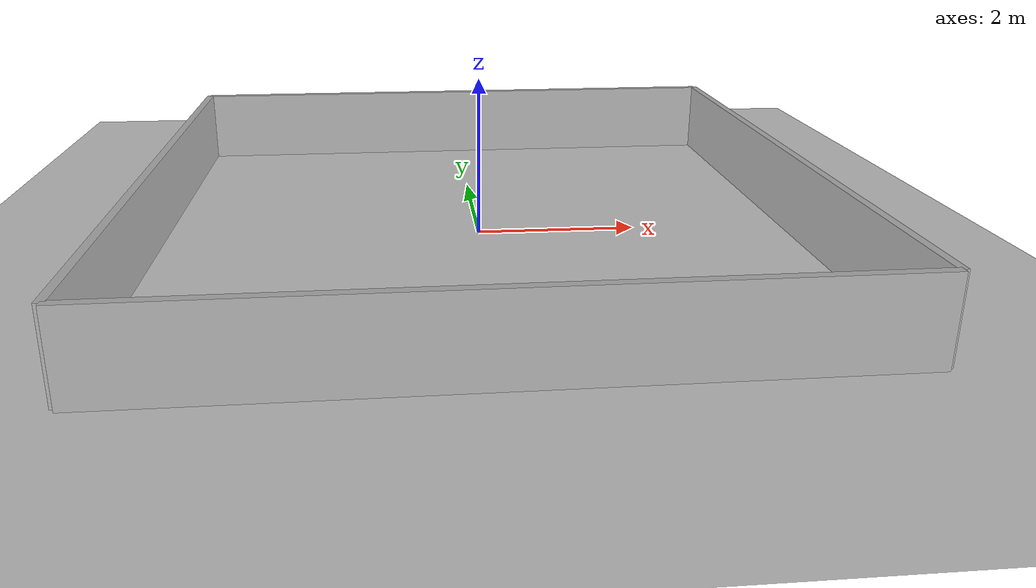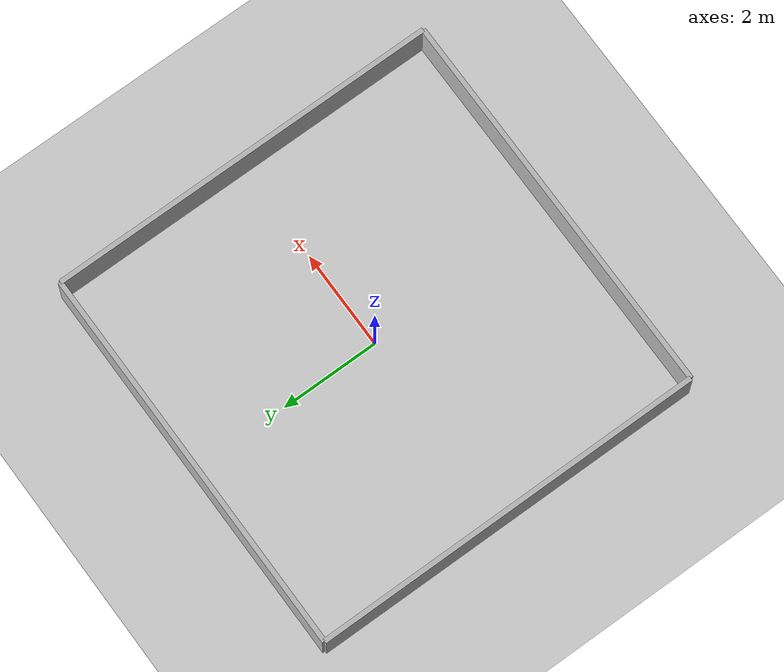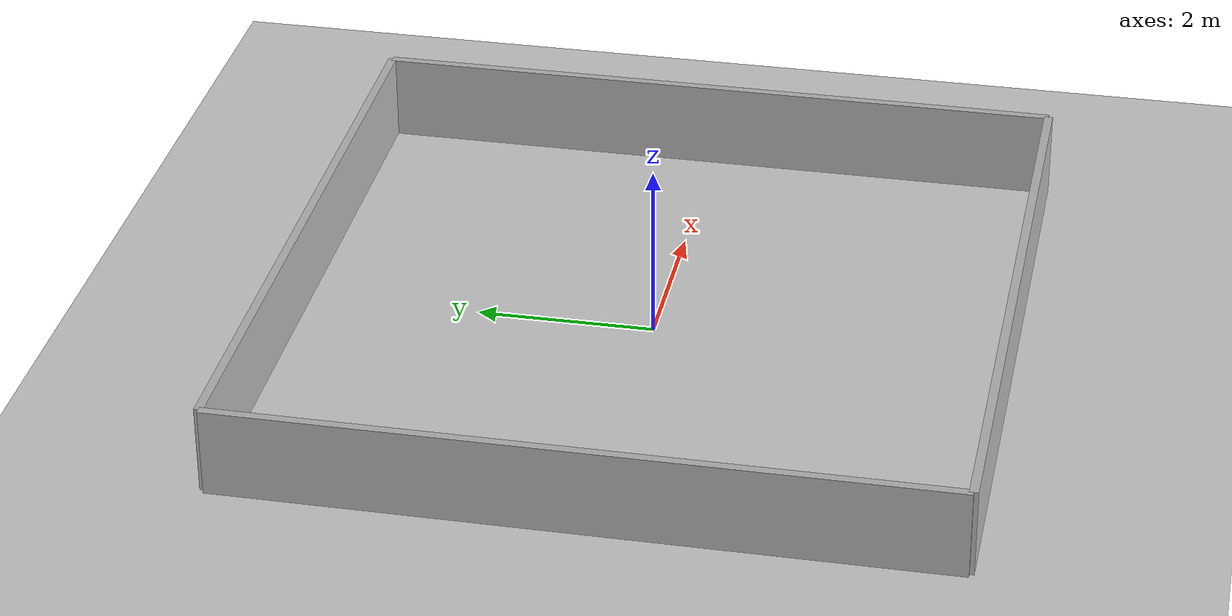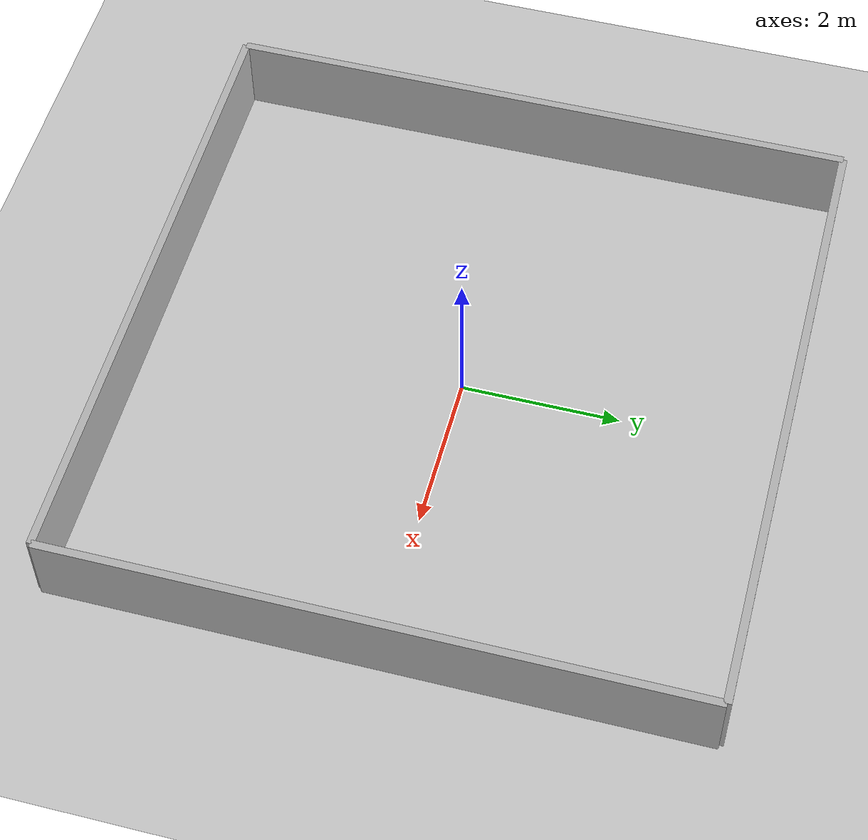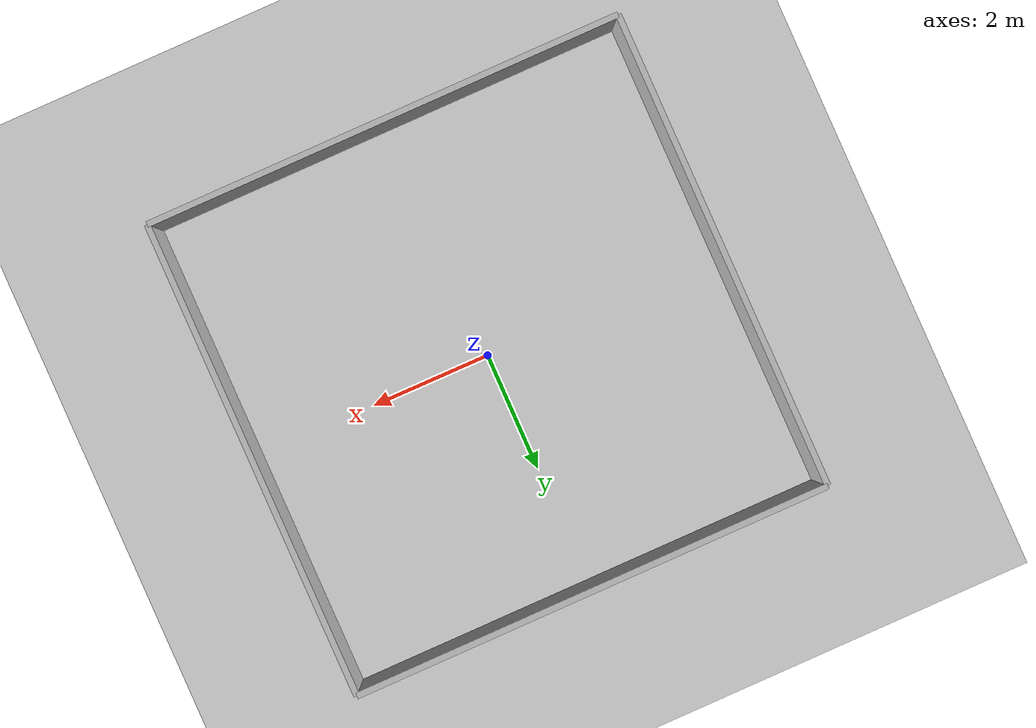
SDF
<?xml version="1.0" ?>

<sdf version="1.6">

  <world name="floor_cleaner_world">

    <!-- Ground -->
    <include>
      <uri>model://ground_plane</uri>
    </include>

    <!-- Sun -->
    <include>
      <uri>model://sun</uri>
    </include>

    <!-- WALL 1 - FRONT -->

    <model name="wall_front">

      <static>true</static>

      <link name="wall">

        <collision name="collision">

          <geometry>
            <box>
              <size>8 0.1 1</size>
            </box>
          </geometry>

        </collision>

        <visual name="visual">

          <geometry>
            <box>
              <size>8 0.1 1</size>
            </box>
          </geometry>

        </visual>

      </link>

      <pose>0 4 0.5 0 0 0</pose>

    </model>

    <!-- WALL 2 - BACK -->

    <model name="wall_back">

      <static>true</static>

      <link name="wall">

        <collision name="collision">

          <geometry>
            <box>
              <size>8 0.1 1</size>
            </box>
          </geometry>

        </collision>

        <visual name="visual">

          <geometry>
            <box>
              <size>8 0.1 1</size>
            </box>
          </geometry>

        </visual>

      </link>

      <pose>0 -4 0.5 0 0 0</pose>

    </model>

    <!-- WALL 3 - LEFT -->

    <model name="wall_left">

      <static>true</static>

      <link name="wall">

        <collision name="collision">

          <geometry>
            <box>
              <size>0.1 8 1</size>
            </box>
          </geometry>

        </collision>

        <visual name="visual">

          <geometry>
            <box>
              <size>0.1 8 1</size>
            </box>
          </geometry>

        </visual>

      </link>

      <pose>-4 0 0.5 0 0 0</pose>

    </model>

    <!-- WALL 4 - RIGHT -->

    <model name="wall_right">

      <static>true</static>

      <link name="wall">

        <collision name="collision">

          <geometry>
            <box>
              <size>0.1 8 1</size>
            </box>
          </geometry>

        </collision>

        <visual name="visual">

          <geometry>
            <box>
              <size>0.1 8 1</size>
            </box>
          </geometry>

        </visual>

      </link>

      <pose>4 0 0.5 0 0 0</pose>

    </model>

  </world>

</sdf>
